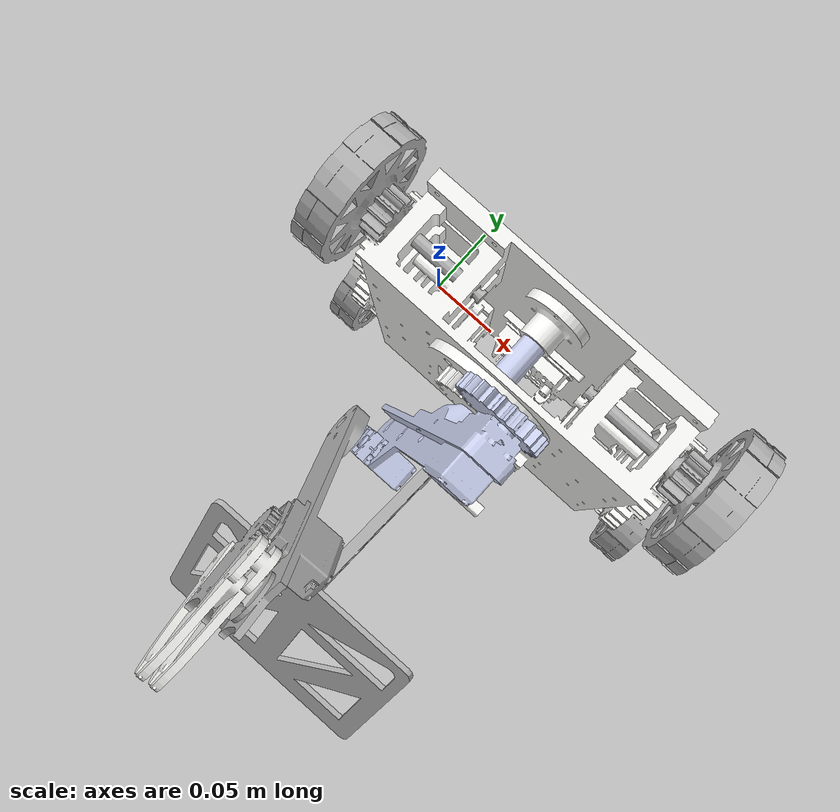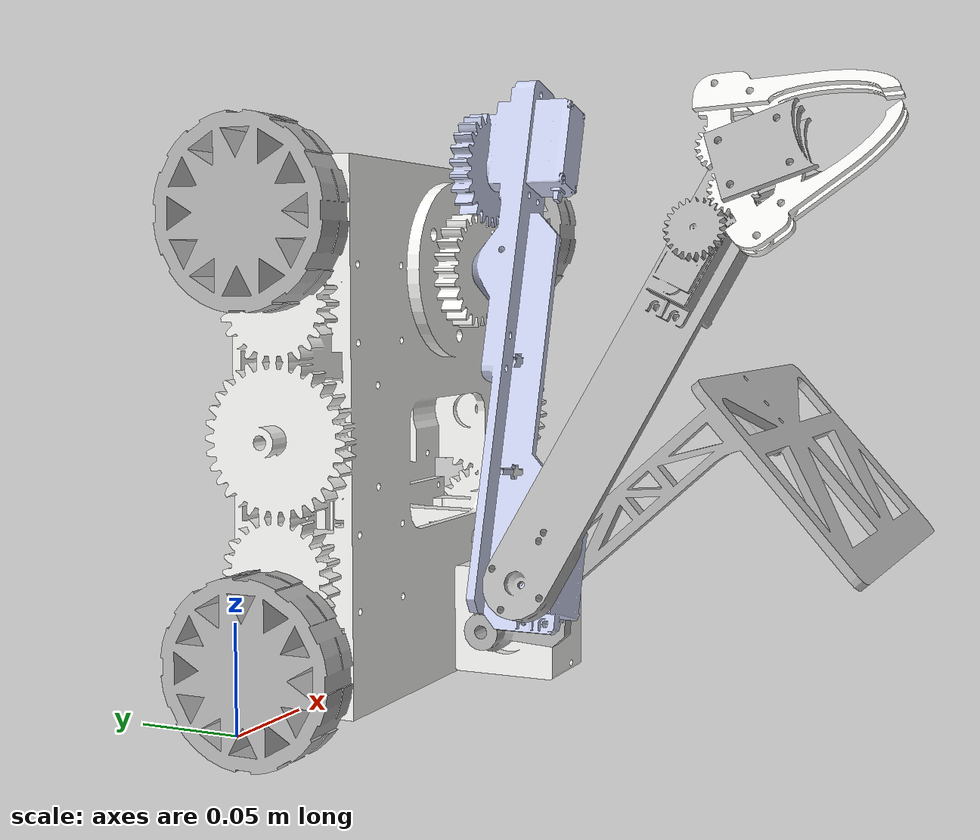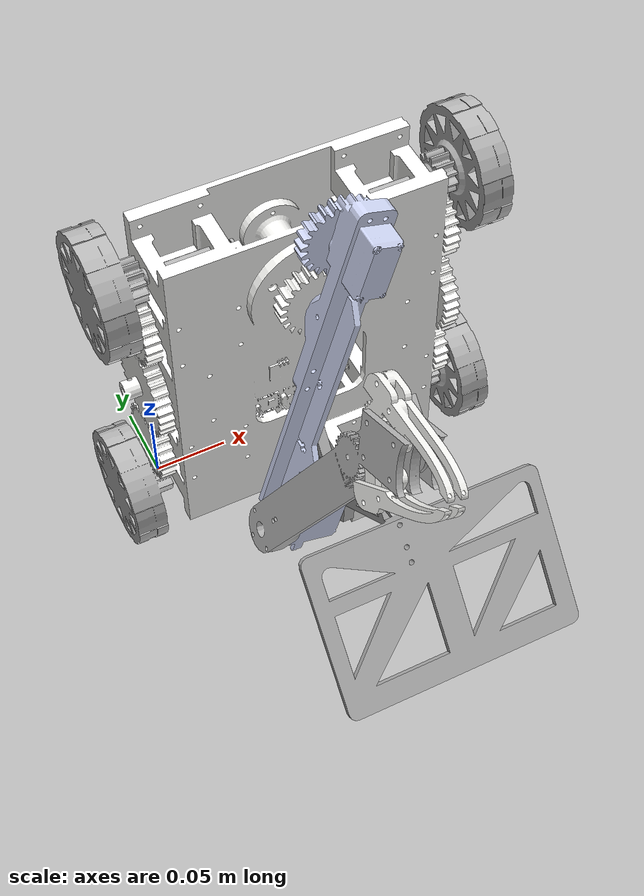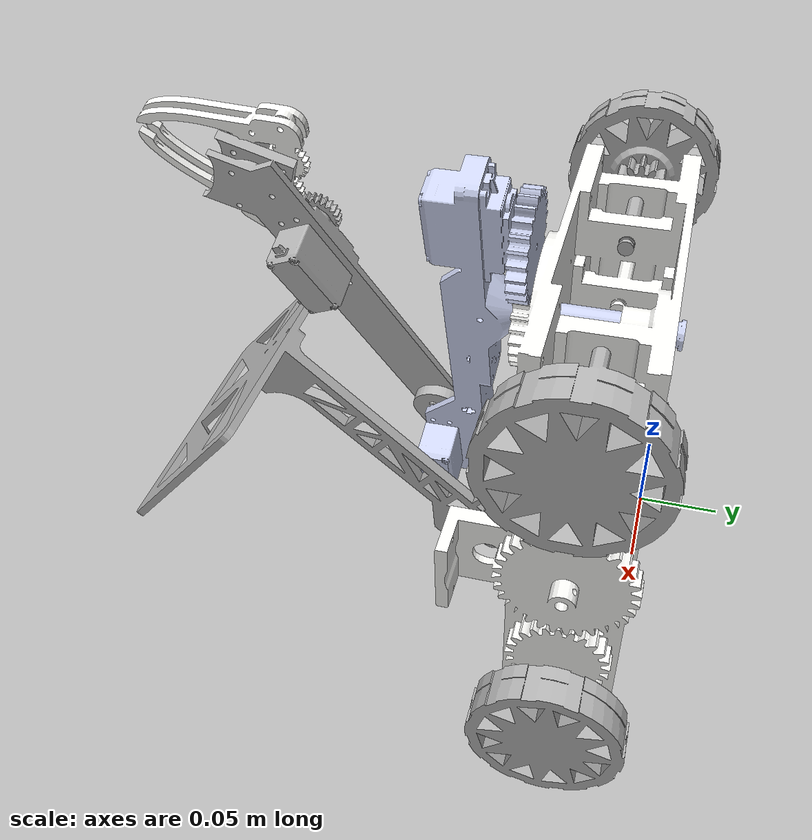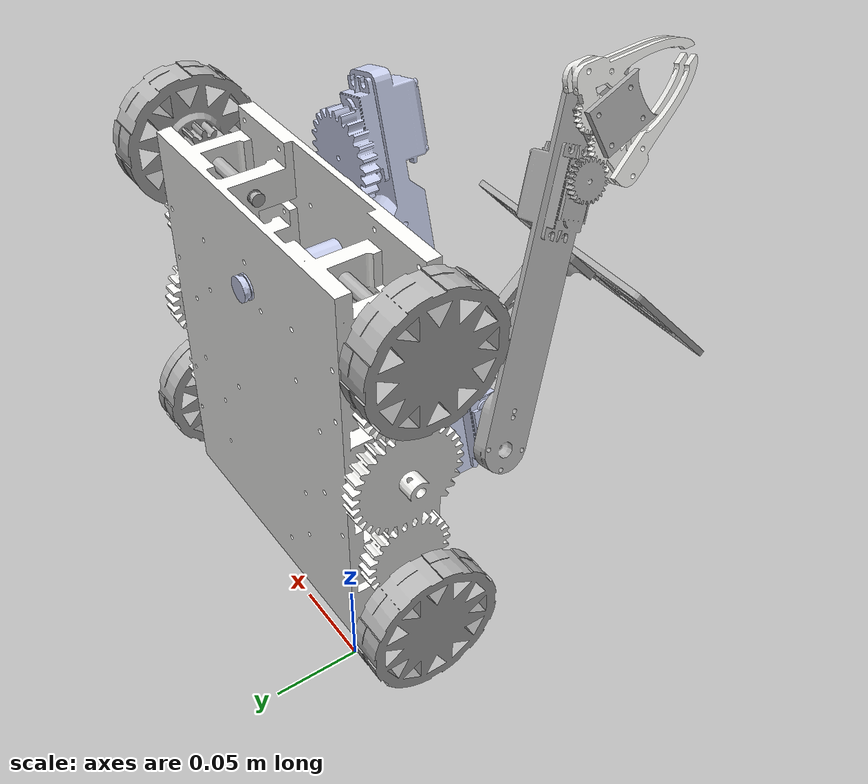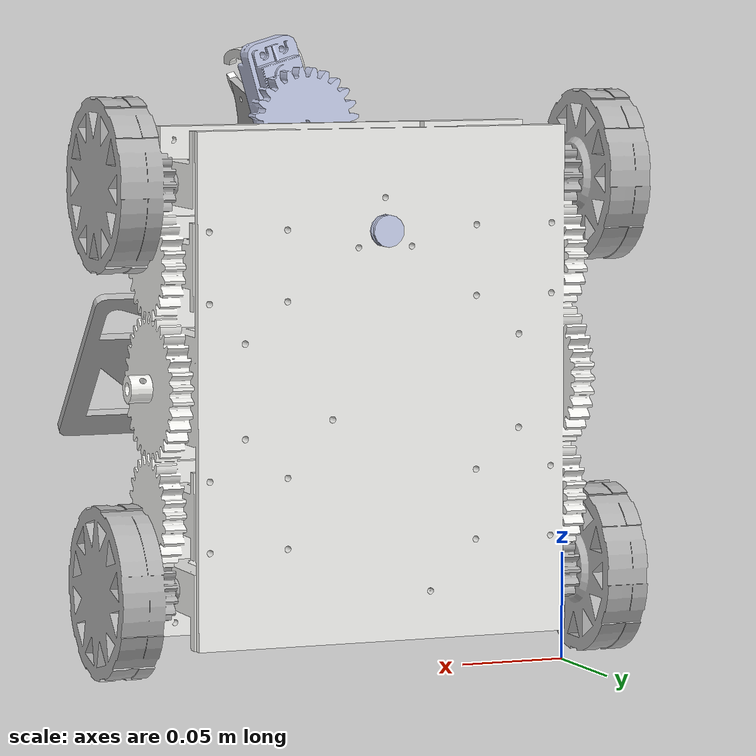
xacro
<?xml version="1.0" encoding="utf-8"?>
<robot
  name="mockup" xmlns:xacro="http://ros.org/wiki/xacro">

  <xacro:include filename="$(find robot_model_pkg)/urdf/robot.gazebo.xacro" />

  <link name="dummy">
  </link>
  <joint name="dummy_joint" type="fixed">
     <parent link="dummy"/>
     <child link="base_link"/>
     <origin rpy="0 0 0" xyz="0 0 0"/>
  </joint>
  <link
    name="base_link">
    <inertial>
      <origin
        xyz="0.0904702080747973 0.130510056782425 0.0317345302542495"
        rpy="0 0 0" />
      <mass
        value="0.928302977473542" />
      <inertia
        ixx="0.00181610571238853"
        ixy="-3.14209393922838E-07"
        ixz="3.25779536545692E-08"
        iyy="0.00118345617589198"
        iyz="1.03803388385665E-07"
        izz="0.00267462603004712" />
    </inertial>
    <visual>
      <origin
        xyz="0 0 0"
        rpy="0 0 0" />
      <geometry>
        <mesh
          filename="package://robot_model_pkg/meshes/base_link.STL" />
      </geometry>
      <material
        name="">
        <color
          rgba="0.964705882352941 0.964705882352941 0.952941176470588 1" />
      </material>
    </visual>
    <collision>
      <origin
        xyz="0 0 0"
        rpy="0 0 0" />
      <geometry>
        <mesh
          filename="package://robot_model_pkg/meshes/base_link.STL" />
      </geometry>
    </collision>
  </link>
  <link
    name="link_1">
    <inertial>
      <origin
        xyz="-0.080802 0.0010653 -0.016188"
        rpy="0 0 0" />
      <mass
        value="0.14634" />
      <inertia
        ixx="4.563E-05"
        ixy="1.3166E-07"
        ixz="-6.51E-08"
        iyy="0.00018838"
        iyz="-2.4306E-08"
        izz="0.00016163" />
    </inertial>
    <visual>
      <origin
        xyz="0 0 0"
        rpy="0 0 0" />
      <geometry>
        <mesh
          filename="package://robot_model_pkg/meshes/link_1.STL" />
      </geometry>
      <material
        name="">
        <color
          rgba="0.79216 0.81961 0.93333 1" />
      </material>
    </visual>
    <collision>
      <origin
        xyz="0 0 0"
        rpy="0 0 0" />
      <geometry>
        <mesh
          filename="package://robot_model_pkg/meshes/link_1.STL" />
      </geometry>
    </collision>
  </link>
  <joint
    name="joint_1"
    type="revolute">
    <origin
      xyz="0.10489 -0.0758 0.25784"
      rpy="-1.5708 -1.2915 0" />
    <parent
      link="base_link" />
    <child
      link="link_1" />
    <axis
      xyz="0 0 0" />
    <limit
      lower="-3.14"
      upper="3.14"
      effort="100"
      velocity="1" />
  </joint>
  <link
    name="link_2">
    <inertial>
      <origin
        xyz="0.113545597524012 0.474509855148572 0.119784028330441"
        rpy="0 0 0" />
      <mass
        value="0.0784116932589274" />
      <inertia
        ixx="0.000124536944888649"
        ixy="4.06133088041699E-09"
        ixz="-6.50247382107134E-10"
        iyy="8.78739717059435E-06"
        iyz="2.9466015885576E-06"
        izz="0.000123196920844073" />
    </inertial>
    <visual>
      <origin
        xyz="0 0 0"
        rpy="0 0 0" />
      <geometry>
        <mesh
          filename="package://robot_model_pkg/meshes/link_2.STL" />
      </geometry>
      <material
        name="">
        <color
          rgba="0.701960784313725 0.701960784313725 0.701960784313725 1" />
      </material>
    </visual>
    <collision>
      <origin
        xyz="0 0 0"
        rpy="0 0 0" />
      <geometry>
        <mesh
          filename="package://robot_model_pkg/meshes/link_2.STL" />
      </geometry>
    </collision>
  </link>
  <joint
    name="joint_2"
    type="revolute">
    <origin
      xyz="-0.56496 0.088574 -0.0099369"
      rpy="-0.43633 0 -1.5708" />
    <parent
      link="link_1" />
    <child
      link="link_2" />
    <axis
      xyz="0 0 0" />
    <limit
      lower="-3.14"
      upper="3.14"
      effort="100"
      velocity="1" />
  </joint>
  <link
    name="link_3">
    <inertial>
      <origin
        xyz="0.017249 0.014155 0.0020148"
        rpy="0 0 0" />
      <mass
        value="0.0078088" />
      <inertia
        ixx="2.7256E-06"
        ixy="1.7588E-08"
        ixz="3.9578E-10"
        iyy="3.0591E-07"
        iyz="1.4279E-10"
        izz="3.0103E-06" />
    </inertial>
    <visual>
      <origin
        xyz="0 0 0"
        rpy="0 0 0" />
      <geometry>
        <mesh
          filename="package://robot_model_pkg/meshes/link_3.STL" />
      </geometry>
      <material
        name="">
        <color
          rgba="0.96471 0.96471 0.95294 1" />
      </material>
    </visual>
    <collision>
      <origin
        xyz="0 0 0"
        rpy="0 0 0" />
      <geometry>
        <mesh
          filename="package://robot_model_pkg/meshes/link_3.STL" />
      </geometry>
    </collision>
  </link>
  <joint
    name="joint_3"
    type="revolute">
    <origin
      xyz="0.129 0.5285 0.11523"
      rpy="-1.5708 1.1283 -1.5708" />
    <parent
      link="link_2" />
    <child
      link="link_3" />
    <axis
      xyz="0 0 0" />
    <limit
      lower="-1"
      upper="1"
      effort="100"
      velocity="1" />
  </joint>
  <link
    name="link_4">
    <inertial>
      <origin
        xyz="0.00953761532679706 0.0168818886089965 0.0019851684839203"
        rpy="0 0 0" />
      <mass
        value="0.00778649569214158" />
      <inertia
        ixx="2.68264008524836E-06"
        ixy="-2.97896363896993E-07"
        ixz="3.75846368252889E-10"
        iyy="3.43783185444972E-07"
        iyz="-1.89418297478716E-10"
        izz="3.00525807992474E-06" />
    </inertial>
    <visual>
      <origin
        xyz="0 0 0"
        rpy="0 0 0" />
      <geometry>
        <mesh
          filename="package://robot_model_pkg/meshes/link_4.STL" />
      </geometry>
      <material
        name="">
        <color
          rgba="0.964705882352941 0.964705882352941 0.952941176470588 1" />
      </material>
    </visual>
    <collision>
      <origin
        xyz="0 0 0"
        rpy="0 0 0" />
      <geometry>
        <mesh
          filename="package://robot_model_pkg/meshes/link_4.STL" />
      </geometry>
    </collision>
  </link>
  <joint
    name="joint_4"
    type="revolute">
    <origin
      xyz="0.129 0.56346 0.14322"
      rpy="-1.5708 0.58726 -1.5708" />
    <parent
      link="link_2" />
    <child
      link="link_4" />
    <axis
      xyz="0 0 0" />
    <limit
      lower="-1"
      upper="1"
      effort="100"
      velocity="1" />
  </joint>
  <link
    name="pusher_Link">
    <inertial>
      <origin
        xyz="0.12343 0.04438 0.0083134"
        rpy="0 0 0" />
      <mass
        value="0.072201" />
      <inertia
        ixx="0.00013796"
        ixy="-2.6708E-05"
        ixz="-6.8721E-07"
        iyy="0.00018094"
        iyz="-9.4172E-07"
        izz="0.00015743" />
    </inertial>
    <visual>
      <origin
        xyz="0 0 0"
        rpy="0 0 0" />
      <geometry>
        <mesh
          filename="package://robot_model_pkg/meshes/pusher_Link.STL" />
      </geometry>
      <material
        name="">
        <color
          rgba="0.70196 0.70196 0.70196 1" />
      </material>
    </visual>
    <collision>
      <origin
        xyz="0 0 0"
        rpy="0 0 0" />
      <geometry>
        <mesh
          filename="package://robot_model_pkg/meshes/pusher_Link.STL" />
      </geometry>
    </collision>
  </link>
  <joint
    name="pusher_joint"
    type="revolute">
    <origin
      xyz="0.093659 -0.083 0.039201"
      rpy="1.5708 -0.20329 -1.5708" />
    <parent
      link="base_link" />
    <child
      link="pusher_Link" />
    <axis
      xyz="0 0 -1" />
    <limit
      lower="0"
      upper="2.4"
      effort="100"
      velocity="1" />
  </joint>
  <link
    name="wheel_rb_Link">
    <inertial>
      <origin
        xyz="6.1282E-05 -3.5381E-05 0.0067688"
        rpy="0 0 0" />
      <mass
        value="0.088831" />
      <inertia
        ixx="4.3347E-05"
        ixy="1.0649E-07"
        ixz="-1.759E-08"
        iyy="4.347E-05"
        iyz="1.0156E-08"
        izz="6.0223E-05" />
    </inertial>
    <visual>
      <origin
        xyz="0 0 0"
        rpy="0 0 0" />
      <geometry>
        <mesh
          filename="package://robot_model_pkg/meshes/wheel_rb_Link.STL" />
      </geometry>
      <material
        name="">
        <color
          rgba="0.70196 0.70196 0.70196 1" />
      </material>
    </visual>
    <collision>
      <origin
        xyz="0 0 0"
        rpy="0 0 0" />
      <geometry>
        <mesh
          filename="package://robot_model_pkg/meshes/wheel_rb_Link.STL" />
      </geometry>
    </collision>
  </link>
  <joint
    name="wheel_rb_joint"
    type="continuous">
    <origin
      xyz="-0.018701151790293 -0.0290000000000009 0.224033817740037"
      rpy="3.14159265358979 1.5707963267949 0" />
    <parent
      link="base_link" />
    <child
      link="wheel_rb_Link" />
    <axis
      xyz="0 0 -1" />
  </joint>
  <link
    name="wheel_lb_Link">
    <inertial>
      <origin
        xyz="3.5417E-05 -6.1262E-05 -0.0067688"
        rpy="0 0 0" />
      <mass
        value="0.088831" />
      <inertia
        ixx="4.347E-05"
        ixy="1.0656E-07"
        ixz="1.0166E-08"
        iyy="4.3347E-05"
        iyz="-1.7584E-08"
        izz="6.0223E-05" />
    </inertial>
    <visual>
      <origin
        xyz="0 0 0"
        rpy="0 0 0" />
      <geometry>
        <mesh
          filename="package://robot_model_pkg/meshes/wheel_lb_Link.STL" />
      </geometry>
      <material
        name="">
        <color
          rgba="0.70196 0.70196 0.70196 1" />
      </material>
    </visual>
    <collision>
      <origin
        xyz="0 0 0"
        rpy="0 0 0" />
      <geometry>
        <mesh
          filename="package://robot_model_pkg/meshes/wheel_lb_Link.STL" />
      </geometry>
    </collision>
  </link>
  <joint
    name="wheel_lb_joint"
    type="continuous">
    <origin
      xyz="0.198698848209706 -0.0289999999999984 0.224033817740039"
      rpy="3.14159265358979 1.5707963267949 0" />
    <parent
      link="base_link" />
    <child
      link="wheel_lb_Link" />
    <axis
      xyz="0 0 -1" />
  </joint>
  <link
    name="wheel_rf_Link">
    <inertial>
      <origin
        xyz="6.1282E-05 -3.5381E-05 0.0067688"
        rpy="0 0 0" />
      <mass
        value="0.088831" />
      <inertia
        ixx="4.3347E-05"
        ixy="1.0649E-07"
        ixz="-1.759E-08"
        iyy="4.347E-05"
        iyz="1.0156E-08"
        izz="6.0223E-05" />
    </inertial>
    <visual>
      <origin
        xyz="0 0 0"
        rpy="0 0 0" />
      <geometry>
        <mesh
          filename="package://robot_model_pkg/meshes/wheel_rf_Link.STL" />
      </geometry>
      <material
        name="">
        <color
          rgba="0.70196 0.70196 0.70196 1" />
      </material>
    </visual>
    <collision>
      <origin
        xyz="0 0 0"
        rpy="0 0 0" />
      <geometry>
        <mesh
          filename="package://robot_model_pkg/meshes/wheel_rf_Link.STL" />
      </geometry>
    </collision>
  </link>
  <joint
    name="wheel_rf_joint"
    type="continuous">
    <origin
      xyz="-0.018701151790293 -0.029000000000002 0.0384566177400361"
      rpy="3.14159265358979 1.5707963267949 0" />
    <parent
      link="base_link" />
    <child
      link="wheel_rf_Link" />
    <axis
      xyz="0 0 -1" />
  </joint>
  <link
    name="wheel_lf_Link">
    <inertial>
      <origin
        xyz="-4.8712E-05 -5.1328E-05 -0.0067688"
        rpy="0 0 0" />
      <mass
        value="0.088831" />
      <inertia
        ixx="4.3415E-05"
        ixy="-1.228E-07"
        ixz="-1.3982E-08"
        iyy="4.3402E-05"
        iyz="-1.4733E-08"
        izz="6.0223E-05" />
    </inertial>
    <visual>
      <origin
        xyz="0 0 0"
        rpy="0 0 0" />
      <geometry>
        <mesh
          filename="package://robot_model_pkg/meshes/wheel_lf_Link.STL" />
      </geometry>
      <material
        name="">
        <color
          rgba="0.70196 0.70196 0.70196 1" />
      </material>
    </visual>
    <collision>
      <origin
        xyz="0 0 0"
        rpy="0 0 0" />
      <geometry>
        <mesh
          filename="package://robot_model_pkg/meshes/wheel_lf_Link.STL" />
      </geometry>
    </collision>
  </link>
  <joint
    name="wheel_lf_joint"
    type="continuous">
    <origin
      xyz="0.198698848209707 -0.0290000000000011 0.0384566177400396"
      rpy="3.14159265358979 1.5707963267949 0" />
    <parent
      link="base_link" />
    <child
      link="wheel_lf_Link" />
    <axis
      xyz="0 0 -1" />
  </joint>

  <transmission name="pusher_Link_trans">
    <type>transmission_interface/SimpleTransmission</type>
    <joint name="pusher_joint">
    <hardwareInterface>hardware_interface/PositionJointInterface</hardwareInterface></joint>
    <actuator name="pusher_Link_motor">
    <hardwareInterface>hardware_interface/PositionJointInterface</hardwareInterface>
      <mechanicalReduction>1</mechanicalReduction>
    </actuator>
  </transmission>
  <transmission name="link_1_trans">
    <type>transmission_interface/SimpleTransmission</type>
    <joint name="joint_1">
    <hardwareInterface>hardware_interface/PositionJointInterface</hardwareInterface></joint>
    <actuator name="link_1_motor">
    <hardwareInterface>hardware_interface/PositionJointInterface</hardwareInterface>
      <mechanicalReduction>1</mechanicalReduction>
    </actuator>
  </transmission>
  <transmission name="link_2_trans">
    <type>transmission_interface/SimpleTransmission</type>
    <joint name="joint_2">
    <hardwareInterface>hardware_interface/PositionJointInterface</hardwareInterface></joint>
    <actuator name="link_2_motor">
    <hardwareInterface>hardware_interface/PositionJointInterface</hardwareInterface>
      <mechanicalReduction>1</mechanicalReduction>
    </actuator>
  </transmission>
  <transmission name="link_3_trans">
    <type>transmission_interface/SimpleTransmission</type>
    <joint name="joint_3">
    <hardwareInterface>hardware_interface/PositionJointInterface</hardwareInterface></joint>
    <actuator name="link_3_motor">
    <hardwareInterface>hardware_interface/PositionJointInterface</hardwareInterface>
      <mechanicalReduction>1</mechanicalReduction>
    </actuator>
  </transmission>
    <transmission name="link_4_trans">
    <type>transmission_interface/SimpleTransmission</type>
    <joint name="joint_4">
    <hardwareInterface>hardware_interface/PositionJointInterface</hardwareInterface></joint>
    <actuator name="link_4_motor">
    <hardwareInterface>hardware_interface/PositionJointInterface</hardwareInterface>
      <mechanicalReduction>1</mechanicalReduction>
    </actuator>
  </transmission>

  <gazebo>
    <plugin name="control" filename="libgazebo_ros_control.so">
      <robotNamespace>/</robotNamespace>
    </plugin>
  </gazebo>

  <gazebo reference="pusher_Link">
    <selfCollide>true</selfCollide>
  </gazebo>
  <gazebo reference="link_1">
    <selfCollide>true</selfCollide>
  </gazebo>
  <gazebo reference="link_2">
    <selfCollide>true</selfCollide>
  </gazebo>
  <gazebo reference="link_3">
    <selfCollide>true</selfCollide>
  </gazebo>
  <gazebo reference="link_4">
    <selfCollide>true</selfCollide>

  </gazebo>
</robot>
